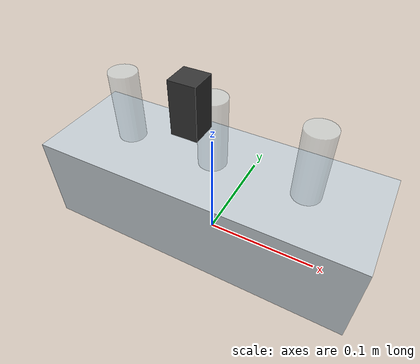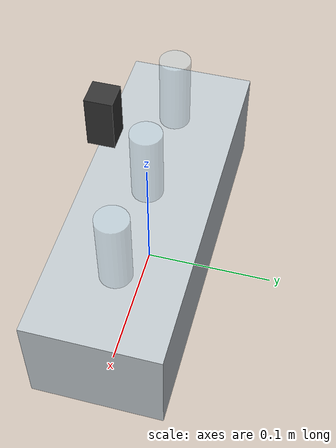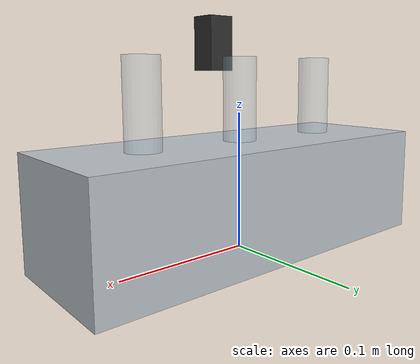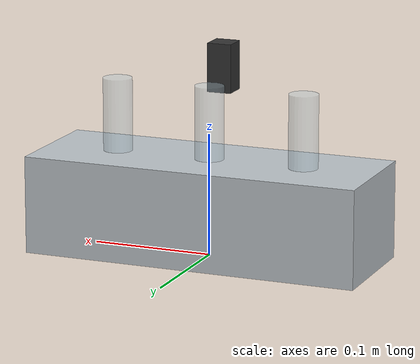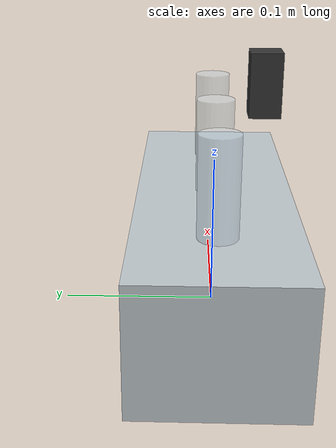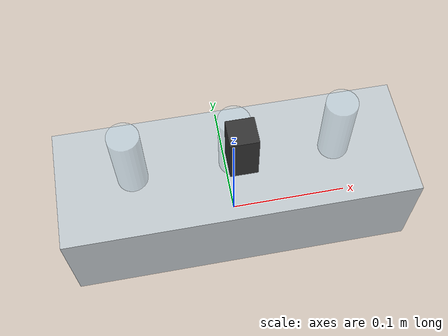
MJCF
<?xml version="1.0" encoding="utf-8"?>
<mujoco model="vial_filling_line">
  <compiler angle="radian" autolimits="true"/>
  <default>
    <default class="body"><geom contype="1" conaffinity="1"/></default>
  </default>
  <worldbody>
    <body name="base">
      <geom type="box" size="0.14 0.05 0.04" pos="0 0 0.04" rgba="0.75 0.78 0.8 1" class="body"/>
      <geom type="cylinder" size="0.012 0.03" pos="-0.08 0 0.11" rgba="0.75 0.85 0.9 0.35" class="body"/>
      <geom type="cylinder" size="0.012 0.03" pos="0 0 0.11" rgba="0.75 0.85 0.9 0.35" class="body"/>
      <geom type="cylinder" size="0.012 0.03" pos="0.08 0 0.11" rgba="0.75 0.85 0.9 0.35" class="body"/>
      <body name="nozzle" pos="0 -0.03 0.15">
        <joint name="nozzle_joint" type="slide" axis="0 0 1" range="-0.05 0" damping="0.5" frictionloss="0.5"/>
  <geom name="nozzle_body" type="box" size="0.01 0.01 0.02" pos="0 0 0" rgba="0.2 0.2 0.2 1" class="body"/>
  <site name="grasp_site" pos="0 0 0" size="0.005" rgba="1 0 0 1" group="4"/>
      </body>
    </body>
  </worldbody>
</mujoco>
